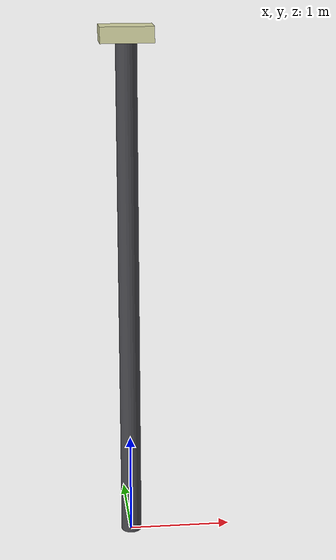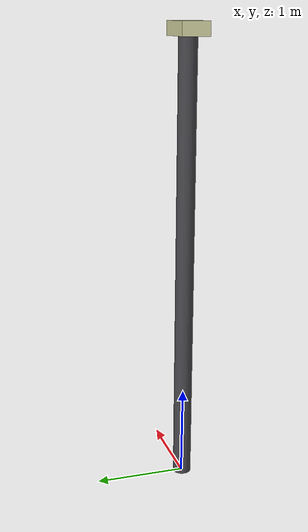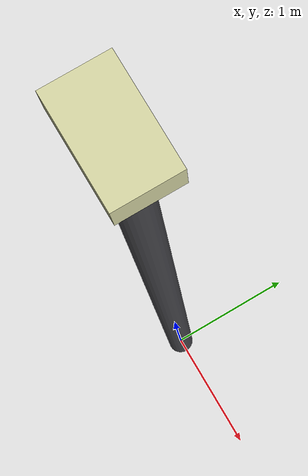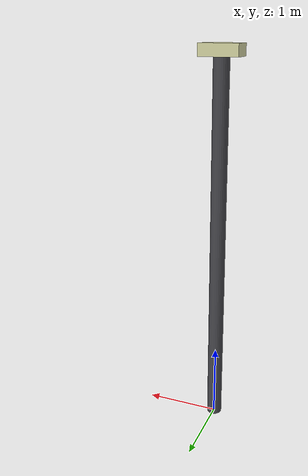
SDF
<?xml version="1.0" ?>
<sdf version="1.9">
  <model name="street_light">
    <static>true</static>
    <link name="link">

      <!-- Столб: цилиндр 0 .. 5 м по Z -->
      <visual name="pole_visual">
        <pose>0 0 2.5 0 0 0</pose>
        <geometry>
          <cylinder>
            <radius>0.1</radius>
            <length>5.0</length>
          </cylinder>
        </geometry>
        <material>
          <ambient>0.15 0.15 0.16 1</ambient>
          <diffuse>0.28 0.28 0.30 1</diffuse>
        </material>
      </visual>
      <collision name="pole_collision">
        <pose>0 0 2.5 0 0 0</pose>
        <geometry>
          <cylinder>
            <radius>0.1</radius>
            <length>5.0</length>
          </cylinder>
        </geometry>
      </collision>

      <!-- Плафон наверху -->
      <visual name="head_visual">
        <pose>0 0 5.0 0 0 0</pose>
        <geometry>
          <box>
            <size>0.5 0.3 0.15</size>
          </box>
        </geometry>
        <material>
          <ambient>0.7 0.7 0.5 1</ambient>
          <diffuse>0.85 0.85 0.65 1</diffuse>
          <emissive>0.3 0.3 0.15 1</emissive>
        </material>
      </visual>

    </link>
  </model>
</sdf>
